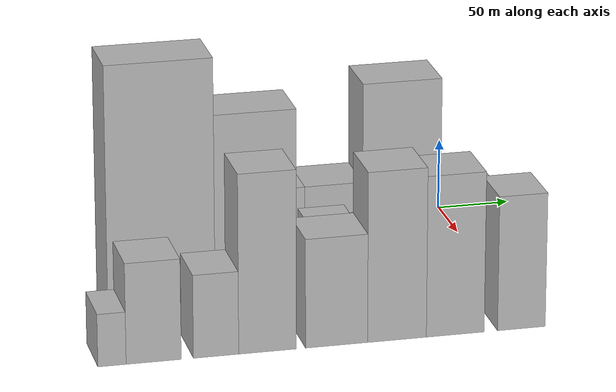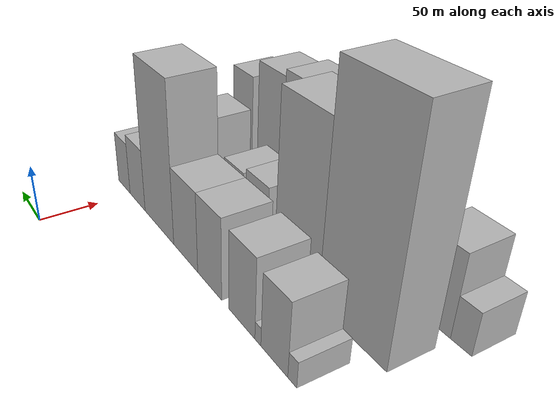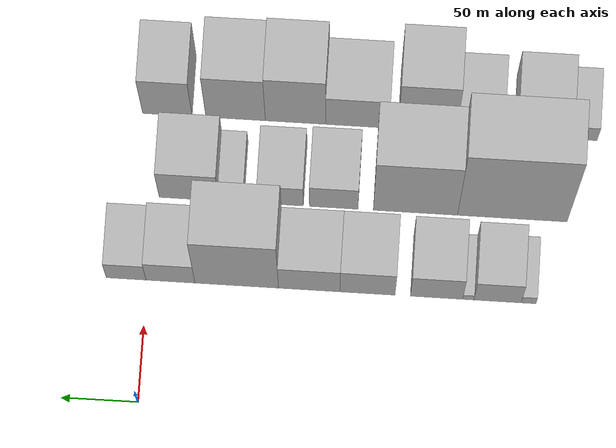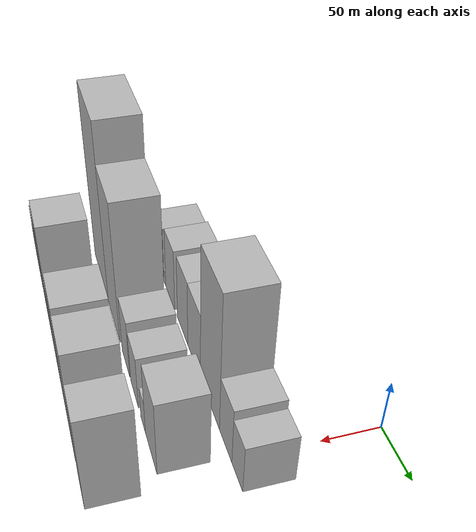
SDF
<sdf version="1.6">
 <world name="default">
  <model name="building_8">
   <static>1</static>
   <pose>100.0000 -246.9305 0 0.000000 0.000000 0.000000</pose>
   <link name="link">
    <pose>0 0 10.50 0 0 0</pose>
    <collision name="collision"><geometry><box><size>40.0000 9.5841 21.0000</size></box></geometry></collision>
    <visual name="visual">
     <cast_shadows>0</cast_shadows>
     <geometry><box><size>40.0000 9.5841 21.0000</size></box></geometry>
     <material>
      <script>
       <uri>model://HANNAS_wall/materials/scripts</uri>
       <uri>model://HANNAS_wall/materials/textures</uri>
       <name>vrc/HANNAS_wall</name>
      </script>
     </material>
    </visual>
   </link>
  </model>
  <model name="building_9">
   <static>1</static>
   <pose>100.0000 -226.8471 0 0.000000 0.000000 0.000000</pose>
   <link name="link">
    <pose>0 0 30.00 0 0 0</pose>
    <collision name="collision"><geometry><box><size>40.0000 30.5827 60.0000</size></box></geometry></collision>
    <visual name="visual">
     <cast_shadows>0</cast_shadows>
     <geometry><box><size>40.0000 30.5827 60.0000</size></box></geometry>
     <material>
      <script>
       <uri>model://HANNAS_wall/materials/scripts</uri>
       <uri>model://HANNAS_wall/materials/textures</uri>
       <name>vrc/HANNAS_wall</name>
      </script>
     </material>
    </visual>
   </link>
  </model>
  <model name="building_10">
   <static>1</static>
   <pose>100.0000 -207.9256 0 0.000000 0.000000 0.000000</pose>
   <link name="link">
    <pose>0 0 7.50 0 0 0</pose>
    <collision name="collision"><geometry><box><size>40.0000 7.2604 15.0000</size></box></geometry></collision>
    <visual name="visual">
     <cast_shadows>0</cast_shadows>
     <geometry><box><size>40.0000 7.2604 15.0000</size></box></geometry>
     <material>
      <script>
       <uri>model://HANNAS_wall/materials/scripts</uri>
       <uri>model://HANNAS_wall/materials/textures</uri>
       <name>vrc/HANNAS_wall</name>
      </script>
     </material>
    </visual>
   </link>
  </model>
  <model name="building_11">
   <static>1</static>
   <pose>100.0000 -187.4058 0 0.000000 0.000000 0.000000</pose>
   <link name="link">
    <pose>0 0 33.00 0 0 0</pose>
    <collision name="collision"><geometry><box><size>40.0000 33.7791 66.0000</size></box></geometry></collision>
    <visual name="visual">
     <cast_shadows>0</cast_shadows>
     <geometry><box><size>40.0000 33.7791 66.0000</size></box></geometry>
     <material>
      <script>
       <uri>model://HANNAS_wall/materials/scripts</uri>
       <uri>model://HANNAS_wall/materials/textures</uri>
       <name>vrc/HANNAS_wall</name>
      </script>
     </material>
    </visual>
   </link>
  </model>
  <model name="building_12">
   <static>1</static>
   <pose>100.0000 -142.6966 0 0.000000 0.000000 0.000000</pose>
   <link name="link">
    <pose>0 0 34.50 0 0 0</pose>
    <collision name="collision"><geometry><box><size>40.0000 35.6393 69.0000</size></box></geometry></collision>
    <visual name="visual">
     <cast_shadows>0</cast_shadows>
     <geometry><box><size>40.0000 35.6393 69.0000</size></box></geometry>
     <material>
      <script>
       <uri>model://HANNAS_wall/materials/scripts</uri>
       <uri>model://HANNAS_wall/materials/textures</uri>
       <name>vrc/HANNAS_wall</name>
      </script>
     </material>
    </visual>
   </link>
  </model>
  <model name="building_13">
   <static>1</static>
   <pose>100.0000 -105.0004 0 0.000000 0.000000 0.000000</pose>
   <link name="link">
    <pose>0 0 34.50 0 0 0</pose>
    <collision name="collision"><geometry><box><size>40.0000 39.7530 69.0000</size></box></geometry></collision>
    <visual name="visual">
     <cast_shadows>0</cast_shadows>
     <geometry><box><size>40.0000 39.7530 69.0000</size></box></geometry>
     <material>
      <script>
       <uri>model://HANNAS_wall/materials/scripts</uri>
       <uri>model://HANNAS_wall/materials/textures</uri>
       <name>vrc/HANNAS_wall</name>
      </script>
     </material>
    </visual>
   </link>
  </model>
  <model name="building_14">
   <static>1</static>
   <pose>100.0000 -58.0740 0 0.000000 0.000000 0.000000</pose>
   <link name="link">
    <pose>0 0 69.00 0 0 0</pose>
    <collision name="collision"><geometry><box><size>40.0000 54.0998 138.0000</size></box></geometry></collision>
    <visual name="visual">
     <cast_shadows>0</cast_shadows>
     <geometry><box><size>40.0000 54.0998 138.0000</size></box></geometry>
     <material>
      <script>
       <uri>model://HANNAS_wall/materials/scripts</uri>
       <uri>model://HANNAS_wall/materials/textures</uri>
       <name>vrc/HANNAS_wall</name>
      </script>
     </material>
    </visual>
   </link>
  </model>
  <model name="building_15">
   <static>1</static>
   <pose>100.0000 -15.1862 0 0.000000 0.000000 0.000000</pose>
   <link name="link">
    <pose>0 0 28.50 0 0 0</pose>
    <collision name="collision"><geometry><box><size>40.0000 31.6759 57.0000</size></box></geometry></collision>
    <visual name="visual">
     <cast_shadows>0</cast_shadows>
     <geometry><box><size>40.0000 31.6759 57.0000</size></box></geometry>
     <material>
      <script>
       <uri>model://HANNAS_wall/materials/scripts</uri>
       <uri>model://HANNAS_wall/materials/textures</uri>
       <name>vrc/HANNAS_wall</name>
      </script>
     </material>
    </visual>
   </link>
  </model>
  <model name="building_16">
   <static>1</static>
   <pose>100.0000 13.5166 0 0.000000 0.000000 0.000000</pose>
   <link name="link">
    <pose>0 0 24.00 0 0 0</pose>
    <collision name="collision"><geometry><box><size>40.0000 25.7296 48.0000</size></box></geometry></collision>
    <visual name="visual">
     <cast_shadows>0</cast_shadows>
     <geometry><box><size>40.0000 25.7296 48.0000</size></box></geometry>
     <material>
      <script>
       <uri>model://HANNAS_wall/materials/scripts</uri>
       <uri>model://HANNAS_wall/materials/textures</uri>
       <name>vrc/HANNAS_wall</name>
      </script>
     </material>
    </visual>
   </link>
  </model>
  <model name="building_42">
   <static>1</static>
   <pose>155.0000 -233.5154 0 0.000000 0.000000 0.000000</pose>
   <link name="link">
    <pose>0 0 91.50 0 0 0</pose>
    <collision name="collision"><geometry><box><size>40.0000 71.1804 183.0000</size></box></geometry></collision>
    <visual name="visual">
     <cast_shadows>0</cast_shadows>
     <geometry><box><size>40.0000 71.1804 183.0000</size></box></geometry>
     <material>
      <script>
       <uri>model://HANNAS_wall/materials/scripts</uri>
       <uri>model://HANNAS_wall/materials/textures</uri>
       <name>vrc/HANNAS_wall</name>
      </script>
     </material>
    </visual>
   </link>
  </model>
  <model name="building_43">
   <static>1</static>
   <pose>155.0000 -170.5950 0 0.000000 0.000000 0.000000</pose>
   <link name="link">
    <pose>0 0 72.00 0 0 0</pose>
    <collision name="collision"><geometry><box><size>40.0000 54.6604 144.0000</size></box></geometry></collision>
    <visual name="visual">
     <cast_shadows>0</cast_shadows>
     <geometry><box><size>40.0000 54.6604 144.0000</size></box></geometry>
     <material>
      <script>
       <uri>model://HANNAS_wall/materials/scripts</uri>
       <uri>model://HANNAS_wall/materials/textures</uri>
       <name>vrc/HANNAS_wall</name>
      </script>
     </material>
    </visual>
   </link>
  </model>
  <model name="building_44">
   <static>1</static>
   <pose>155.0000 -117.5051 0 0.000000 0.000000 0.000000</pose>
   <link name="link">
    <pose>0 0 30.00 0 0 0</pose>
    <collision name="collision"><geometry><box><size>40.0000 31.5194 60.0000</size></box></geometry></collision>
    <visual name="visual">
     <cast_shadows>0</cast_shadows>
     <geometry><box><size>40.0000 31.5194 60.0000</size></box></geometry>
     <material>
      <script>
       <uri>model://HANNAS_wall/materials/scripts</uri>
       <uri>model://HANNAS_wall/materials/textures</uri>
       <name>vrc/HANNAS_wall</name>
      </script>
     </material>
    </visual>
   </link>
  </model>
  <model name="building_45">
   <static>1</static>
   <pose>155.0000 -82.9741 0 0.000000 0.000000 0.000000</pose>
   <link name="link">
    <pose>0 0 27.00 0 0 0</pose>
    <collision name="collision"><geometry><box><size>40.0000 29.5426 54.0000</size></box></geometry></collision>
    <visual name="visual">
     <cast_shadows>0</cast_shadows>
     <geometry><box><size>40.0000 29.5426 54.0000</size></box></geometry>
     <material>
      <script>
       <uri>model://HANNAS_wall/materials/scripts</uri>
       <uri>model://HANNAS_wall/materials/textures</uri>
       <name>vrc/HANNAS_wall</name>
      </script>
     </material>
    </visual>
   </link>
  </model>
  <model name="building_46">
   <static>1</static>
   <pose>155.0000 -50.9510 0 0.000000 0.000000 0.000000</pose>
   <link name="link">
    <pose>0 0 16.50 0 0 0</pose>
    <collision name="collision"><geometry><box><size>40.0000 16.5037 33.0000</size></box></geometry></collision>
    <visual name="visual">
     <cast_shadows>0</cast_shadows>
     <geometry><box><size>40.0000 16.5037 33.0000</size></box></geometry>
     <material>
      <script>
       <uri>model://HANNAS_wall/materials/scripts</uri>
       <uri>model://HANNAS_wall/materials/textures</uri>
       <name>vrc/HANNAS_wall</name>
      </script>
     </material>
    </visual>
   </link>
  </model>
  <model name="building_47">
   <static>1</static>
   <pose>155.0000 -23.3699 0 0.000000 0.000000 0.000000</pose>
   <link name="link">
    <pose>0 0 37.50 0 0 0</pose>
    <collision name="collision"><geometry><box><size>40.0000 38.6584 75.0000</size></box></geometry></collision>
    <visual name="visual">
     <cast_shadows>0</cast_shadows>
     <geometry><box><size>40.0000 38.6584 75.0000</size></box></geometry>
     <material>
      <script>
       <uri>model://HANNAS_wall/materials/scripts</uri>
       <uri>model://HANNAS_wall/materials/textures</uri>
       <name>vrc/HANNAS_wall</name>
      </script>
     </material>
    </visual>
   </link>
  </model>
  <model name="building_70">
   <static>1</static>
   <pose>210.0000 -276.8095 0 0.000000 0.000000 0.000000</pose>
   <link name="link">
    <pose>0 0 18.00 0 0 0</pose>
    <collision name="collision"><geometry><box><size>40.0000 18.3050 36.0000</size></box></geometry></collision>
    <visual name="visual">
     <cast_shadows>0</cast_shadows>
     <geometry><box><size>40.0000 18.3050 36.0000</size></box></geometry>
     <material>
      <script>
       <uri>model://HANNAS_wall/materials/scripts</uri>
       <uri>model://HANNAS_wall/materials/textures</uri>
       <name>vrc/HANNAS_wall</name>
      </script>
     </material>
    </visual>
   </link>
  </model>
  <model name="building_71">
   <static>1</static>
   <pose>210.0000 -249.7302 0 0.000000 0.000000 0.000000</pose>
   <link name="link">
    <pose>0 0 34.50 0 0 0</pose>
    <collision name="collision"><geometry><box><size>40.0000 35.8534 69.0000</size></box></geometry></collision>
    <visual name="visual">
     <cast_shadows>0</cast_shadows>
     <geometry><box><size>40.0000 35.8534 69.0000</size></box></geometry>
     <material>
      <script>
       <uri>model://HANNAS_wall/materials/scripts</uri>
       <uri>model://HANNAS_wall/materials/textures</uri>
       <name>vrc/HANNAS_wall</name>
      </script>
     </material>
    </visual>
   </link>
  </model>
  <model name="building_72">
   <static>1</static>
   <pose>210.0000 -208.9678 0 0.000000 0.000000 0.000000</pose>
   <link name="link">
    <pose>0 0 28.50 0 0 0</pose>
    <collision name="collision"><geometry><box><size>40.0000 29.6713 57.0000</size></box></geometry></collision>
    <visual name="visual">
     <cast_shadows>0</cast_shadows>
     <geometry><box><size>40.0000 29.6713 57.0000</size></box></geometry>
     <material>
      <script>
       <uri>model://HANNAS_wall/materials/scripts</uri>
       <uri>model://HANNAS_wall/materials/textures</uri>
       <name>vrc/HANNAS_wall</name>
      </script>
     </material>
    </visual>
   </link>
  </model>
  <model name="building_73">
   <static>1</static>
   <pose>210.0000 -175.1057 0 0.000000 0.000000 0.000000</pose>
   <link name="link">
    <pose>0 0 61.50 0 0 0</pose>
    <collision name="collision"><geometry><box><size>40.0000 38.0530 123.0000</size></box></geometry></collision>
    <visual name="visual">
     <cast_shadows>0</cast_shadows>
     <geometry><box><size>40.0000 38.0530 123.0000</size></box></geometry>
     <material>
      <script>
       <uri>model://HANNAS_wall/materials/scripts</uri>
       <uri>model://HANNAS_wall/materials/textures</uri>
       <name>vrc/HANNAS_wall</name>
      </script>
     </material>
    </visual>
   </link>
  </model>
  <model name="building_74">
   <static>1</static>
   <pose>210.0000 -129.4726 0 0.000000 0.000000 0.000000</pose>
   <link name="link">
    <pose>0 0 37.50 0 0 0</pose>
    <collision name="collision"><geometry><box><size>40.0000 41.2132 75.0000</size></box></geometry></collision>
    <visual name="visual">
     <cast_shadows>0</cast_shadows>
     <geometry><box><size>40.0000 41.2132 75.0000</size></box></geometry>
     <material>
      <script>
       <uri>model://HANNAS_wall/materials/scripts</uri>
       <uri>model://HANNAS_wall/materials/textures</uri>
       <name>vrc/HANNAS_wall</name>
      </script>
     </material>
    </visual>
   </link>
  </model>
  <model name="building_75">
   <static>1</static>
   <pose>210.0000 -89.2094 0 0.000000 0.000000 0.000000</pose>
   <link name="link">
    <pose>0 0 58.50 0 0 0</pose>
    <collision name="collision"><geometry><box><size>40.0000 39.3130 117.0000</size></box></geometry></collision>
    <visual name="visual">
     <cast_shadows>0</cast_shadows>
     <geometry><box><size>40.0000 39.3130 117.0000</size></box></geometry>
     <material>
      <script>
       <uri>model://HANNAS_wall/materials/scripts</uri>
       <uri>model://HANNAS_wall/materials/textures</uri>
       <name>vrc/HANNAS_wall</name>
      </script>
     </material>
    </visual>
   </link>
  </model>
  <model name="building_76">
   <static>1</static>
   <pose>210.0000 -50.0914 0 0.000000 0.000000 0.000000</pose>
   <link name="link">
    <pose>0 0 55.50 0 0 0</pose>
    <collision name="collision"><geometry><box><size>40.0000 38.9231 111.0000</size></box></geometry></collision>
    <visual name="visual">
     <cast_shadows>0</cast_shadows>
     <geometry><box><size>40.0000 38.9231 111.0000</size></box></geometry>
     <material>
      <script>
       <uri>model://HANNAS_wall/materials/scripts</uri>
       <uri>model://HANNAS_wall/materials/textures</uri>
       <name>vrc/HANNAS_wall</name>
      </script>
     </material>
    </visual>
   </link>
  </model>
  <model name="building_77">
   <static>1</static>
   <pose>210.0000 -5.4737 0 0.000000 0.000000 0.000000</pose>
   <link name="link">
    <pose>0 0 46.50 0 0 0</pose>
    <collision name="collision"><geometry><box><size>40.0000 32.3122 93.0000</size></box></geometry></collision>
    <visual name="visual">
     <cast_shadows>0</cast_shadows>
     <geometry><box><size>40.0000 32.3122 93.0000</size></box></geometry>
     <material>
      <script>
       <uri>model://HANNAS_wall/materials/scripts</uri>
       <uri>model://HANNAS_wall/materials/textures</uri>
       <name>vrc/HANNAS_wall</name>
      </script>
     </material>
    </visual>
   </link>
  </model>
 </world>
</sdf>
